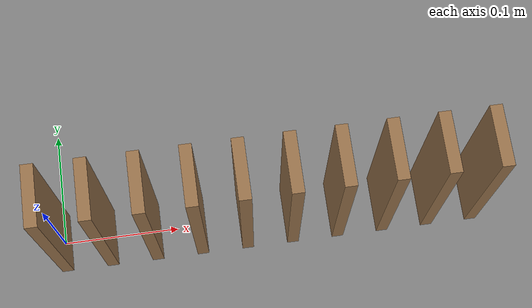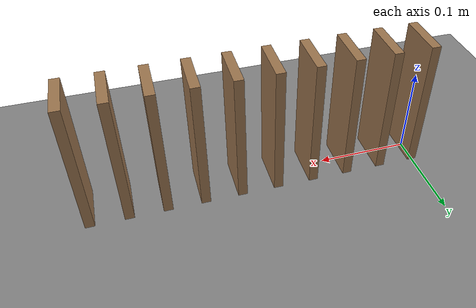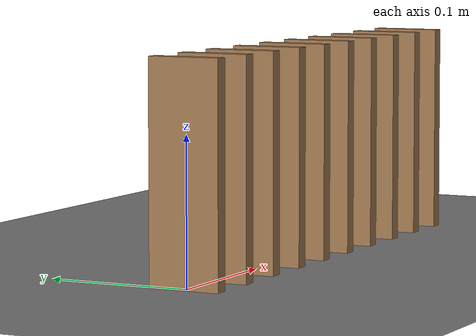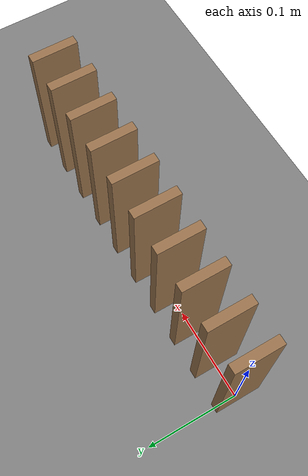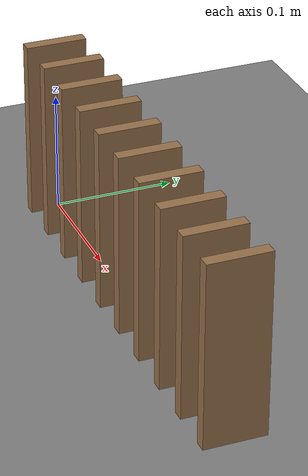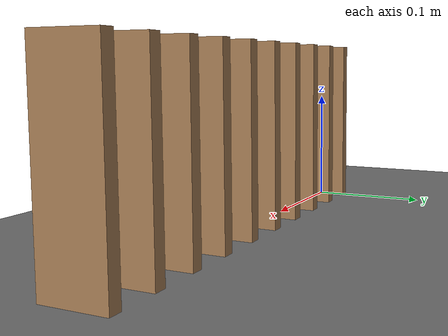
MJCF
<mujoco model="ten_dominoes_falling_in_sequence">
  <compiler angle="radian"/>
  <option timestep="0.002"/>
  <worldbody>
    <geom name="floor" type="plane" size="6 6 0.1" friction="0.9 0.005 0.0001"/>
    <body name="domino1" pos="0 0 0.075">
      <freejoint/>
      <geom name="domino1" type="box" pos="0 0 0" size="0.005 0.025 0.075" mass="0.1" friction="0.9 0.005 0.0001" solref="0.01 1" rgba="0.6 0.45 0.3 1"/>
    </body>
    <body name="domino2" pos="0.04 0 0.075">
      <freejoint/>
      <geom name="domino2" type="box" pos="0 0 0" size="0.005 0.025 0.075" mass="0.1" friction="0.9 0.005 0.0001" solref="0.01 1" rgba="0.6 0.45 0.3 1"/>
    </body>
    <body name="domino3" pos="0.08 0 0.075">
      <freejoint/>
      <geom name="domino3" type="box" pos="0 0 0" size="0.005 0.025 0.075" mass="0.1" friction="0.9 0.005 0.0001" solref="0.01 1" rgba="0.6 0.45 0.3 1"/>
    </body>
    <body name="domino4" pos="0.12 0 0.075">
      <freejoint/>
      <geom name="domino4" type="box" pos="0 0 0" size="0.005 0.025 0.075" mass="0.1" friction="0.9 0.005 0.0001" solref="0.01 1" rgba="0.6 0.45 0.3 1"/>
    </body>
    <body name="domino5" pos="0.16 0 0.075">
      <freejoint/>
      <geom name="domino5" type="box" pos="0 0 0" size="0.005 0.025 0.075" mass="0.1" friction="0.9 0.005 0.0001" solref="0.01 1" rgba="0.6 0.45 0.3 1"/>
    </body>
    <body name="domino6" pos="0.2 0 0.075">
      <freejoint/>
      <geom name="domino6" type="box" pos="0 0 0" size="0.005 0.025 0.075" mass="0.1" friction="0.9 0.005 0.0001" solref="0.01 1" rgba="0.6 0.45 0.3 1"/>
    </body>
    <body name="domino7" pos="0.24 0 0.075">
      <freejoint/>
      <geom name="domino7" type="box" pos="0 0 0" size="0.005 0.025 0.075" mass="0.1" friction="0.9 0.005 0.0001" solref="0.01 1" rgba="0.6 0.45 0.3 1"/>
    </body>
    <body name="domino8" pos="0.28 0 0.075">
      <freejoint/>
      <geom name="domino8" type="box" pos="0 0 0" size="0.005 0.025 0.075" mass="0.1" friction="0.9 0.005 0.0001" solref="0.01 1" rgba="0.6 0.45 0.3 1"/>
    </body>
    <body name="domino9" pos="0.32 0 0.075">
      <freejoint/>
      <geom name="domino9" type="box" pos="0 0 0" size="0.005 0.025 0.075" mass="0.1" friction="0.9 0.005 0.0001" solref="0.01 1" rgba="0.6 0.45 0.3 1"/>
    </body>
    <body name="domino10" pos="0.36 0 0.075">
      <freejoint/>
      <geom name="domino10" type="box" pos="0 0 0" size="0.005 0.025 0.075" mass="0.1" friction="0.9 0.005 0.0001" solref="0.01 1" rgba="0.6 0.45 0.3 1"/>
    </body>
  </worldbody>
  <keyframe>
    <key name="start" qpos="0 0 0.075 1 0 0 0 0.04 0 0.075 1 0 0 0 0.08 0 0.075 1 0 0 0 0.12 0 0.075 1 0 0 0 0.16 0 0.075 1 0 0 0 0.2 0 0.075 1 0 0 0 0.24 0 0.075 1 0 0 0 0.28 0 0.075 1 0 0 0 0.32 0 0.075 1 0 0 0 0.36 0 0.075 1 0 0 0" qvel="0 0 0 0 10 0 0 0 0 0 0 0 0 0 0 0 0 0 0 0 0 0 0 0 0 0 0 0 0 0 0 0 0 0 0 0 0 0 0 0 0 0 0 0 0 0 0 0 0 0 0 0 0 0 0 0 0 0 0 0"/>
  </keyframe>
</mujoco>
